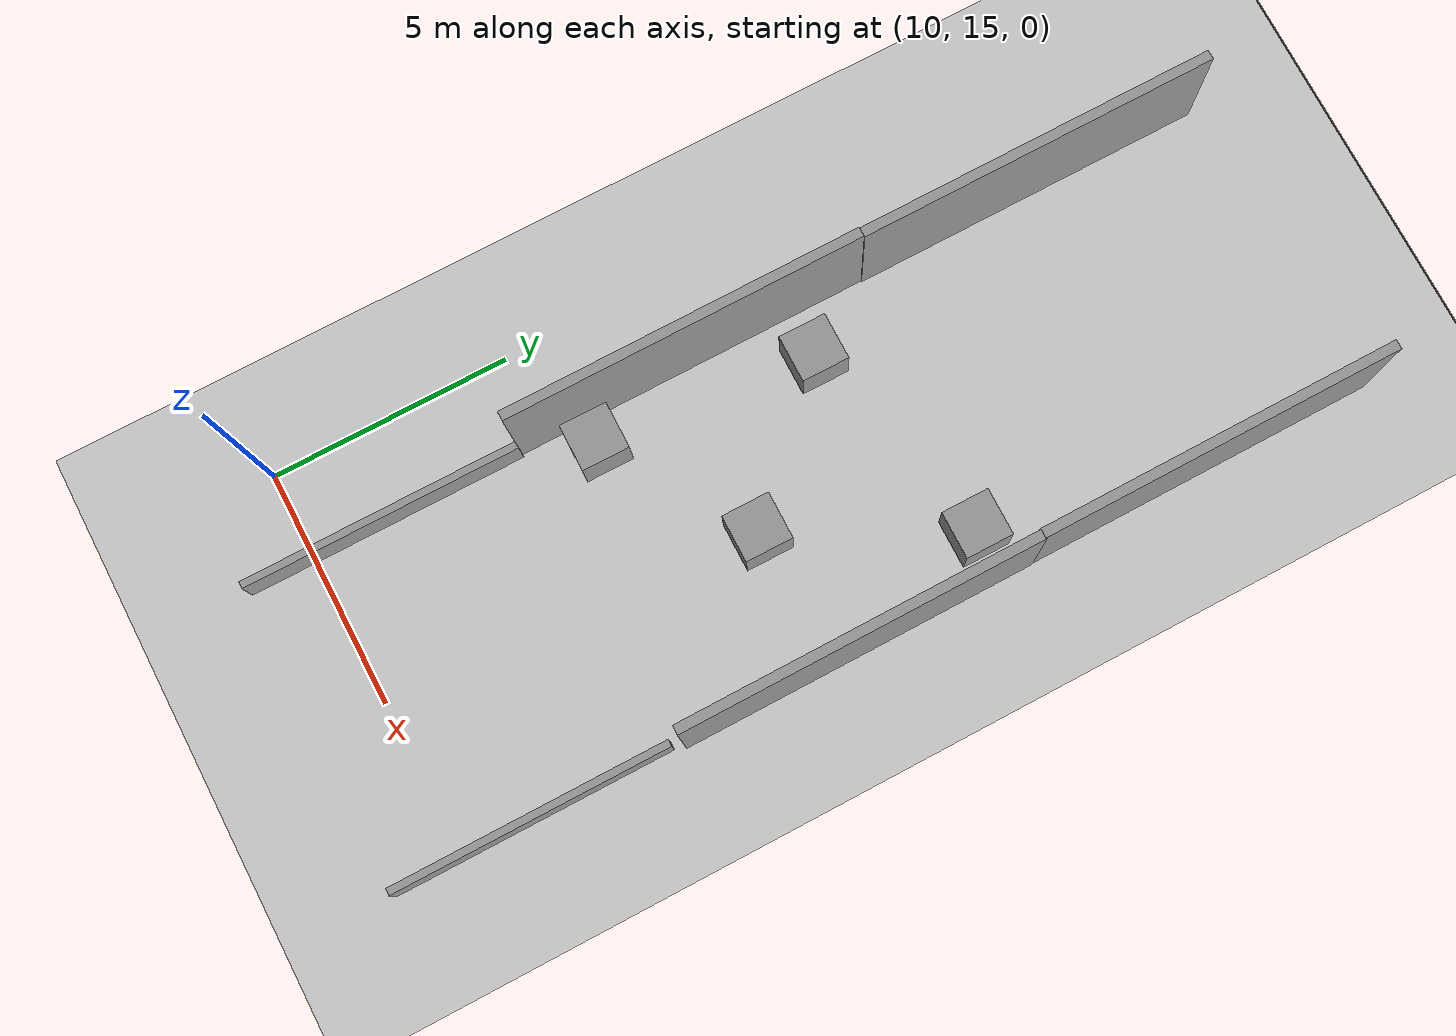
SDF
<sdf version="1.6">
 <world name="default">
  <light name="sun" type="directional">
   <pose>0 0 10 0 -0 0</pose>
   <diffuse>0.8 0.8 0.8 1</diffuse>
   <specular>0.2 0.2 0.2 1</specular>
   <attenuation>
    <range>1000</range>
    <constant>0.9</constant>
    <linear>0.01</linear>
    <quadratic>0.001</quadratic>
   </attenuation>
   <direction>-0.5 0.1 -0.9</direction>
  </light>
  <model name="ground_plane">
   <static>1</static>
   <link name="link">
    <collision name="collision">
     <geometry><plane><normal>0 0 1</normal><size>100 100</size></plane></geometry>
     <surface>
      <contact><collide_bitmask>65535</collide_bitmask></contact>
      <friction><ode><mu>100</mu><mu2>50</mu2></ode></friction>
     </surface>
    </collision>
    <visual name="visual">
     <cast_shadows>0</cast_shadows>
     <geometry><plane><normal>0 0 1</normal><size>100 100</size></plane></geometry>
     <material>
      <script><uri>file://media/materials/scripts/gazebo.material</uri><name>Gazebo/Grey</name></script>
     </material>
    </visual>
   </link>
  </model>
  <gravity>0 0 -9.8</gravity>
  <magnetic_field>6e-06 2.3e-05 -4.2e-05</magnetic_field>
  <atmosphere type="adiabatic"/>
  <physics name="default_physics" default="0" type="ode">
   <max_step_size>0.001</max_step_size>
   <real_time_factor>1</real_time_factor>
   <real_time_update_rate>1000</real_time_update_rate>
  </physics>
  <scene><ambient>0.4 0.4 0.4 1</ambient><background>0.7 0.7 0.7 1</background><shadows>1</shadows></scene>
  <audio><device>default</device></audio>
  <spherical_coordinates>
   <surface_model>EARTH_WGS84</surface_model>
   <latitude_deg>0</latitude_deg>
   <longitude_deg>0</longitude_deg>
   <elevation>0</elevation>
   <heading_deg>0</heading_deg>
  </spherical_coordinates>
  <model name="ground_plane_0">
   <static>1</static>
   <link name="link">
    <collision name="collision">
     <geometry><plane><normal>0 0 1</normal><size>100 100</size></plane></geometry>
     <surface><friction><ode><mu>100</mu><mu2>50</mu2></ode></friction></surface>
    </collision>
    <visual name="visual">
     <cast_shadows>0</cast_shadows>
     <geometry><plane><normal>0 0 1</normal><size>100 100</size></plane></geometry>
     <material>
      <script><uri>file://media/materials/scripts/gazebo.material</uri><name>Gazebo/Grey</name></script>
     </material>
    </visual>
   </link>
   <pose>0.033354 95.0033 0 0 -0 0</pose>
  </model>
  <model name="grey_wall_clone_clone_clone_clone_clone_0_clone">
   <static>1</static>
   <link name="link">
    <pose>0 0 1.4 0 -0 0</pose>
    <collision name="collision"><geometry><box><size>7.5 0.2 2.8</size></box></geometry></collision>
    <visual name="visual">
     <cast_shadows>0</cast_shadows>
     <geometry><box><size>7.5 0.2 2.8</size></box></geometry>
     <material>
      <script>
       <uri>model://grey_wall/materials/scripts</uri>
       <uri>model://grey_wall/materials/textures</uri>
       <name>vrc/grey_wall</name>
      </script>
     </material>
    </visual>
   </link>
   <pose>11.7534 23.1982 0 0 -0 1.57375</pose>
  </model>
  <model name="grey_wall_clone_clone_clone_clone_clone_0_clone_clone">
   <static>1</static>
   <link name="link">
    <pose>0 0 1.4 0 -0 0</pose>
    <collision name="collision"><geometry><box><size>7.5 0.2 2.8</size></box></geometry></collision>
    <visual name="visual">
     <cast_shadows>0</cast_shadows>
     <geometry><box><size>7.5 0.2 2.8</size></box></geometry>
     <material>
      <script>
       <uri>model://grey_wall/materials/scripts</uri>
       <uri>model://grey_wall/materials/textures</uri>
       <name>vrc/grey_wall</name>
      </script>
     </material>
    </visual>
   </link>
   <pose>18.3259 23.4162 0 0 -0 1.57375</pose>
  </model>
  <model name="grey_wall_clone_clone_clone_clone_clone_0_clone_clone_clone">
   <static>1</static>
   <link name="link">
    <pose>0 0 1.4 0 -0 0</pose>
    <collision name="collision"><geometry><box><size>7.5 0.2 2.8</size></box></geometry></collision>
    <visual name="visual">
     <cast_shadows>0</cast_shadows>
     <geometry><box><size>7.5 0.2 2.8</size></box></geometry>
     <material>
      <script>
       <uri>model://grey_wall/materials/scripts</uri>
       <uri>model://grey_wall/materials/textures</uri>
       <name>vrc/grey_wall</name>
      </script>
     </material>
    </visual>
   </link>
   <pose>18.2867 30.893 0 0 -0 1.57375</pose>
  </model>
  <model name="grey_wall_clone_clone_clone_clone_clone_0_clone_clone_clone_0">
   <static>1</static>
   <link name="link">
    <pose>0 0 1.4 0 -0 0</pose>
    <collision name="collision"><geometry><box><size>7.5 0.2 2.8</size></box></geometry></collision>
    <visual name="visual">
     <cast_shadows>0</cast_shadows>
     <geometry><box><size>7.5 0.2 2.8</size></box></geometry>
     <material>
      <script>
       <uri>model://grey_wall/materials/scripts</uri>
       <uri>model://grey_wall/materials/textures</uri>
       <name>vrc/grey_wall</name>
      </script>
     </material>
    </visual>
   </link>
   <pose>11.7525 30.698 0 0 -0 1.57375</pose>
  </model>
  <model name="unit_box_clone">
   <pose>12.8512 25.3538 0.499995 6e-06 3e-06 -2e-06</pose>
   <link name="link">
    <inertial>
     <mass>1</mass>
     <inertia>
      <ixx>0.166667</ixx>
      <ixy>0</ixy>
      <ixz>0</ixz>
      <iyy>0.166667</iyy>
      <iyz>0</iyz>
      <izz>0.166667</izz>
     </inertia>
    </inertial>
    <collision name="collision"><geometry><box><size>1 1 1</size></box></geometry></collision>
    <visual name="visual">
     <geometry><box><size>1 1 1</size></box></geometry>
     <material>
      <script><name>Gazebo/Grey</name><uri>file://media/materials/scripts/gazebo.material</uri></script>
     </material>
    </visual>
   </link>
  </model>
  <model name="unit_box_clone_0">
   <pose>17.3457 26.4735 0.500002 0 -4e-06 0</pose>
   <link name="link">
    <inertial>
     <mass>1</mass>
     <inertia>
      <ixx>0.166667</ixx>
      <ixy>0</ixy>
      <ixz>0</ixz>
      <iyy>0.166667</iyy>
      <iyz>0</iyz>
      <izz>0.166667</izz>
     </inertia>
    </inertial>
    <collision name="collision"><geometry><box><size>1 1 1</size></box></geometry></collision>
    <visual name="visual">
     <geometry><box><size>1 1 1</size></box></geometry>
     <material>
      <script><name>Gazebo/Grey</name><uri>file://media/materials/scripts/gazebo.material</uri></script>
     </material>
    </visual>
   </link>
  </model>
  <model name="unit_box_clone_2">
   <pose>12.4461 20.8302 0.499995 -6e-06 -3e-06 -1e-06</pose>
   <link name="link">
    <inertial>
     <mass>1</mass>
     <inertia>
      <ixx>0.166667</ixx>
      <ixy>0</ixy>
      <ixz>0</ixz>
      <iyy>0.166667</iyy>
      <iyz>0</iyz>
      <izz>0.166667</izz>
     </inertia>
    </inertial>
    <collision name="collision"><geometry><box><size>1 1 1</size></box></geometry></collision>
    <visual name="visual">
     <geometry><box><size>1 1 1</size></box></geometry>
     <material>
      <script><name>Gazebo/Grey</name><uri>file://media/materials/scripts/gazebo.material</uri></script>
     </material>
    </visual>
   </link>
  </model>
  <model name="unit_box_clone_3">
   <pose>15.4571 22.7642 0.499995 6e-06 -3e-06 1e-06</pose>
   <link name="link">
    <inertial>
     <mass>1</mass>
     <inertia>
      <ixx>0.166667</ixx>
      <ixy>0</ixy>
      <ixz>0</ixz>
      <iyy>0.166667</iyy>
      <iyz>0</iyz>
      <izz>0.166667</izz>
     </inertia>
    </inertial>
    <collision name="collision"><geometry><box><size>1 1 1</size></box></geometry></collision>
    <visual name="visual">
     <geometry><box><size>1 1 1</size></box></geometry>
     <material>
      <script><name>Gazebo/Grey</name><uri>file://media/materials/scripts/gazebo.material</uri></script>
     </material>
    </visual>
   </link>
  </model>
  <model name="Untitled">
   <pose>15.0604 16.5465 0 0 -0 0</pose>
   <link name="Wall_0">
    <collision name="Wall_0_Collision">
     <geometry><box><size>5.817 0.15 0.8</size></box></geometry>
     <pose>0 0 0.4 0 -0 0</pose>
    </collision>
    <visual name="Wall_0_Visual">
     <pose>0 0 0.4 0 -0 0</pose>
     <geometry><box><size>5.817 0.15 0.8</size></box></geometry>
     <material>
      <script><uri>file://media/materials/scripts/gazebo.material</uri><name>Gazebo/Grey</name></script>
      <ambient>1 1 1 1</ambient>
     </material>
     <meta><layer>0</layer></meta>
    </visual>
    <pose>-3.215 0 0 0 -0 1.5708</pose>
   </link>
   <link name="Wall_2">
    <collision name="Wall_2_Collision">
     <geometry><box><size>5.817 0.15 0.8</size></box></geometry>
     <pose>0 0 0.4 0 -0 0</pose>
    </collision>
    <visual name="Wall_2_Visual">
     <pose>0 0 0.4 0 -0 0</pose>
     <geometry><box><size>5.817 0.15 0.8</size></box></geometry>
     <material>
      <script><uri>file://media/materials/scripts/gazebo.material</uri><name>Gazebo/Grey</name></script>
      <ambient>1 1 1 1</ambient>
     </material>
     <meta><layer>0</layer></meta>
    </visual>
    <pose>3.215 0 0 0 -0 1.5708</pose>
   </link>
   <static>1</static>
  </model>
 </world>
</sdf>
